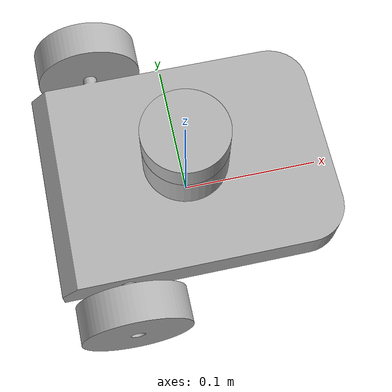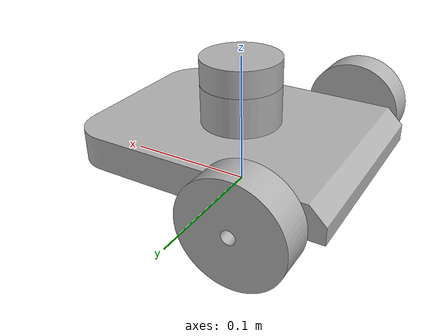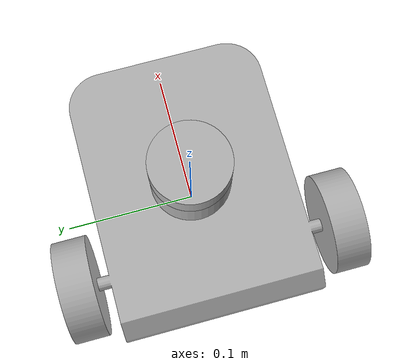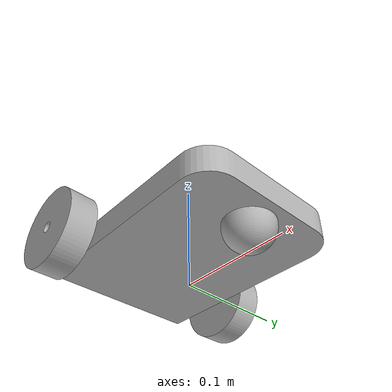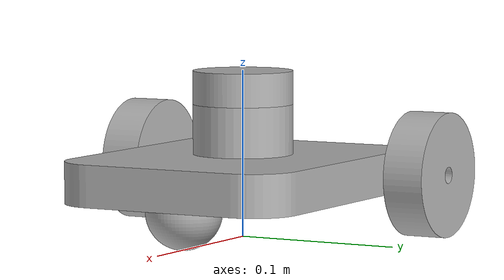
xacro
<?xml version="1.0" ?>
<robot name="rmp01_bot" xmlns:xacro="http://www.ros.org/wiki/xacro">

<xacro:include filename="$(find rmp01_bot_description)/urdf/materials.xacro" />
<xacro:include filename="$(find rmp01_bot_description)/urdf/rmp01_bot.trans" />
<xacro:include filename="$(find rmp01_bot_description)/urdf/rmp01_bot.gazebo" />
<link name="base_link">
  <inertial>
    <origin xyz="0.0002633472663559292 1.1121623019366124e-17 0.04024016932365471" rpy="0 0 0"/>
    <mass value="0.8668378546913297"/>
    <inertia ixx="0.001569" iyy="0.002604" izz="0.003957" ixy="0.0" iyz="0.0" ixz="-9e-06"/>
  </inertial>
  <visual>
    <origin xyz="0 0 0" rpy="0 0 0"/>
    <geometry>
      <mesh filename="package://rmp01_bot_description/meshes/base_link.stl" scale="0.001 0.001 0.001"/>
    </geometry>
    <material name="silver"/>
  </visual>
  <collision>
    <origin xyz="0 0 0" rpy="0 0 0"/>
    <geometry>
      <mesh filename="package://rmp01_bot_description/meshes/base_link.stl" scale="0.001 0.001 0.001"/>
    </geometry>
  </collision>
</link>

<link name="right_wheel_1">
  <inertial>
    <origin xyz="-9.478529072737274e-15 -0.012500000000000011 0.0" rpy="0 0 0"/>
    <mass value="0.10088930282692339"/>
    <inertia ixx="4.1e-05" iyy="7.2e-05" izz="4.1e-05" ixy="0.0" iyz="-0.0" ixz="-0.0"/>
  </inertial>
  <visual>
    <origin xyz="0.055 0.085 -0.0375" rpy="0 0 0"/>
    <geometry>
      <mesh filename="package://rmp01_bot_description/meshes/right_wheel_1.stl" scale="0.001 0.001 0.001"/>
    </geometry>
    <material name="silver"/>
  </visual>
  <collision>
    <origin xyz="0.055 0.085 -0.0375" rpy="0 0 0"/>
    <geometry>
      <mesh filename="package://rmp01_bot_description/meshes/right_wheel_1.stl" scale="0.001 0.001 0.001"/>
    </geometry>
  </collision>
</link>

<link name="left_wheel_1">
  <inertial>
    <origin xyz="-9.478529072737274e-15 0.012499999999999997 0.0" rpy="0 0 0"/>
    <mass value="0.10088930282692339"/>
    <inertia ixx="4.1e-05" iyy="7.2e-05" izz="4.1e-05" ixy="-0.0" iyz="0.0" ixz="-0.0"/>
  </inertial>
  <visual>
    <origin xyz="0.055 -0.085 -0.0375" rpy="0 0 0"/>
    <geometry>
      <mesh filename="package://rmp01_bot_description/meshes/left_wheel_1.stl" scale="0.001 0.001 0.001"/>
    </geometry>
    <material name="silver"/>
  </visual>
  <collision>
    <origin xyz="0.055 -0.085 -0.0375" rpy="0 0 0"/>
    <geometry>
      <mesh filename="package://rmp01_bot_description/meshes/left_wheel_1.stl" scale="0.001 0.001 0.001"/>
    </geometry>
  </collision>
</link>

<link name="caster_1">
  <inertial>
    <origin xyz="-0.03 0.0 -0.009553571428571432" rpy="0 0 0"/>
    <mass value="0.21848549721086696"/>
    <inertia ixx="3.1e-05" iyy="3.1e-05" izz="4.6e-05" ixy="0.0" iyz="-0.0" ixz="-0.0"/>
  </inertial>
  <visual>
    <origin xyz="-0.1 -0.0 -0.025" rpy="0 0 0"/>
    <geometry>
      <mesh filename="package://rmp01_bot_description/meshes/caster_1.stl" scale="0.001 0.001 0.001"/>
    </geometry>
    <material name="silver"/>
  </visual>
  <collision>
    <origin xyz="-0.1 -0.0 -0.025" rpy="0 0 0"/>
    <geometry>
      <mesh filename="package://rmp01_bot_description/meshes/caster_1.stl" scale="0.001 0.001 0.001"/>
    </geometry>
  </collision>
</link>

<link name="lidar_1">
  <inertial>
    <origin xyz="0.0 0.0 0.009999999999999995" rpy="0 0 0"/>
    <mass value="0.44390704195223785"/>
    <inertia ixx="0.000115" iyy="0.000115" izz="0.0002" ixy="0.0" iyz="-0.0" ixz="-0.0"/>
  </inertial>
  <visual>
    <origin xyz="-0.0 -0.0 -0.08" rpy="0 0 0"/>
    <geometry>
      <mesh filename="package://rmp01_bot_description/meshes/lidar_1.stl" scale="0.001 0.001 0.001"/>
    </geometry>
    <material name="silver"/>
  </visual>
  <collision>
    <origin xyz="-0.0 -0.0 -0.08" rpy="0 0 0"/>
    <geometry>
      <mesh filename="package://rmp01_bot_description/meshes/lidar_1.stl" scale="0.001 0.001 0.001"/>
    </geometry>
  </collision>
</link>

<joint name="right_wheel_joint" type="continuous">
  <origin xyz="-0.055 -0.085 0.0375" rpy="0 0 0"/>
  <parent link="base_link"/>
  <child link="right_wheel_1"/>
  <axis xyz="0.0 1.0 0.0"/>
</joint>

<joint name="left_wheel_joint" type="continuous">
  <origin xyz="-0.055 0.085 0.0375" rpy="0 0 0"/>
  <parent link="base_link"/>
  <child link="left_wheel_1"/>
  <axis xyz="0.0 1.0 0.0"/>
</joint>

<joint name="caster_joint" type="fixed">
  <origin xyz="0.1 0.0 0.025" rpy="0 0 0"/>
  <parent link="base_link"/>
  <child link="caster_1"/>
</joint>

<joint name="lidar_joint" type="fixed">
  <origin xyz="0.0 0.0 0.08" rpy="0 0 0"/>
  <parent link="base_link"/>
  <child link="lidar_1"/>
</joint>

</robot>

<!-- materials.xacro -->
<robot name="rmp01_bot" xmlns:xacro="http://www.ros.org/wiki/xacro" >

<material name="silver">
  <color rgba="0.700 0.700 0.700 1.000"/>
</material>

</robot>

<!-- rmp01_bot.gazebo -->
<robot name="rmp01_bot" xmlns:xacro="http://www.ros.org/wiki/xacro" >

<xacro:property name="body_color" value="Gazebo/PurpleGlow" />
<xacro:property name="wheel_color" value="Gazebo/FlatBlack" />

<gazebo>
  <plugin name="control" filename="libgazebo_ros_control.so"/>
</gazebo>
<gazebo reference="base_link">
  <material>${body_color}</material>
  <mu1>0.2</mu1>
  <mu2>0.2</mu2>
  <selfCollide>true</selfCollide>
  <gravity>true</gravity>
</gazebo>

<gazebo reference="right_wheel_1">
  <material>${wheel_color}</material>
  <mu1>0.2</mu1>
  <mu2>0.2</mu2>
  <selfCollide>true</selfCollide>
</gazebo>

<gazebo reference="left_wheel_1">
  <material>${wheel_color}</material>
  <mu1>0.2</mu1>
  <mu2>0.2</mu2>
  <selfCollide>true</selfCollide>
</gazebo>

<gazebo reference="caster_1">
  <material>${wheel_color}</material>
  <mu1>0.2</mu1>
  <mu2>0.2</mu2>
  <selfCollide>true</selfCollide>
</gazebo>

<gazebo reference="lidar_1">
  <material>${body_color}</material>
  <mu1>0.2</mu1>
  <mu2>0.2</mu2>
  <selfCollide>true</selfCollide>
</gazebo>
<!--Differential Drive used to run the robot-->
<gazebo>
  <plugin name="differential_drive_controller" filename="libgazebo_ros_diff_drive.so">

    <!-- Plugin update rate in Hz -->
    <updateRate>10</updateRate>

    <!-- Name of left joint, defaults to `left_joint` -->
    <leftJoint>left_wheel_joint</leftJoint>

    <!-- Name of right joint, defaults to `right_joint` -->
    <rightJoint>right_wheel_joint</rightJoint>

    <!-- The distance from the center of one wheel to the other, in meters, defaults to 0.34 m -->
    <wheelSeparation>0.19</wheelSeparation>

    <!-- Diameter of the wheels, in meters, defaults to 0.15 m -->
    <wheelDiameter>0.075</wheelDiameter>

    <!-- Wheel acceleration, in rad/s^2, defaults to 0.0 rad/s^2 -->
    <wheelAcceleration>1.0</wheelAcceleration>

    <!-- Maximum torque which the wheels can produce, in Nm, defaults to 5 Nm -->
    <wheelTorque>20</wheelTorque>

    <!-- Topic to receive geometry_msgs/Twist message commands, defaults to `cmd_vel` -->
    <commandTopic>cmd_vel</commandTopic>

    <!-- Topic to publish nav_msgs/Odometry messages, defaults to `odom` -->
    <odometryTopic>odom</odometryTopic>

    <!-- Odometry frame, defaults to `odom` -->
    <odometryFrame>odom</odometryFrame>

    <!-- Robot frame to calculate odometry from, defaults to `base_footprint` -->
    <robotBaseFrame>base_link</robotBaseFrame>

    <!-- Odometry source, 0 for ENCODER, 1 for WORLD, defaults to WORLD -->
    <odometrySource>1</odometrySource>

    <!-- Set to true to publish transforms for the wheel links, defaults to false -->
    <publishWheelTF>true</publishWheelTF>

    <!-- Set to true to publish transforms for the odometry, defaults to true -->
    <publishOdom>true</publishOdom>

    <!-- Set to true to publish sensor_msgs/JointState on /joint_states for the wheel joints, defaults to false -->
    <publishWheelJointState>true</publishWheelJointState>

    <!-- Set to true to swap right and left wheels, defaults to true -->
    <legacyMode>false</legacyMode>
  </plugin>
</gazebo>

<!--Laser integration (Hokuyo Laser sensor)-->
<gazebo reference="lidar_1">
    <sensor type="ray" name="head_hokuyo_sensor">
      <pose>0 0 0 0 0 0</pose>
      <visualize>false</visualize>
      <update_rate>40</update_rate>
      <ray>
        <scan>
          <horizontal>
            <samples>720</samples>
            <resolution>1</resolution>
            <min_angle>-3.14</min_angle>
            <max_angle>3.14</max_angle>
          </horizontal>
        </scan>
        <range>
          <min>0.10</min>
          <max>30.0</max>
          <resolution>0.01</resolution>
        </range>
        <noise>
          <type>gaussian</type>
          <mean>0.0</mean>
          <stddev>0.01</stddev>
        </noise>
      </ray>
      <plugin name="gazebo_ros_head_hokuyo_controller" filename="libgazebo_ros_laser.so">
        <topicName>/scan</topicName>
        <frameName>lidar_1</frameName>
      </plugin>
    </sensor>
  </gazebo>

</robot>
